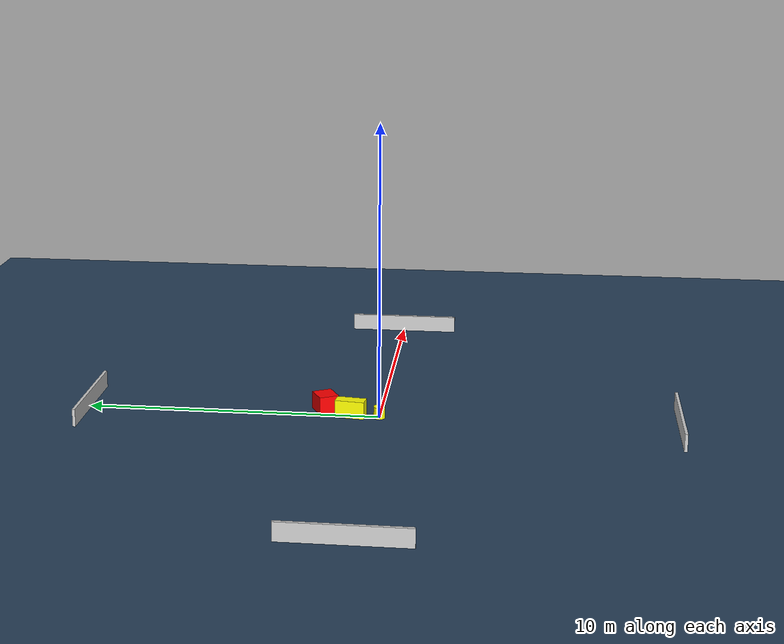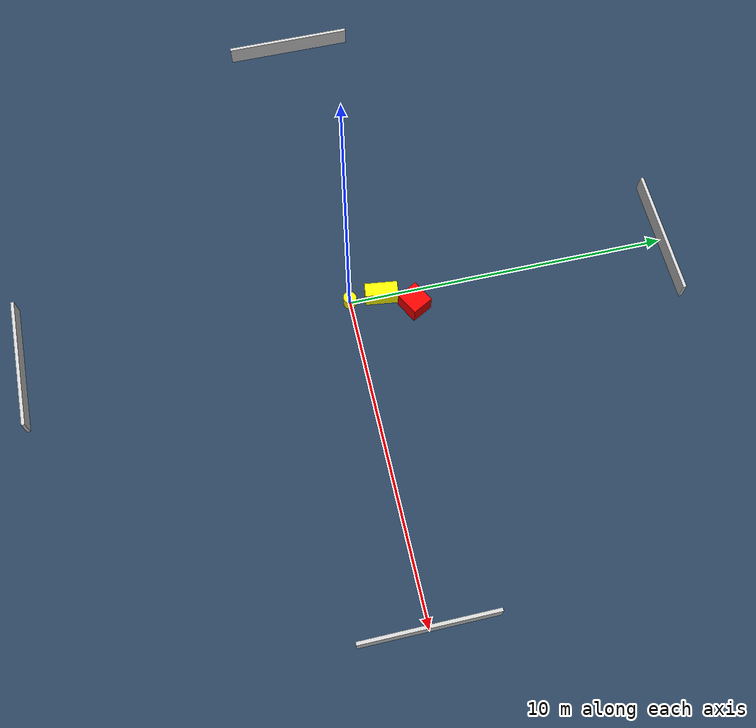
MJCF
<?xml version="1.0" ?>
<mujoco model="generated_environment">
  <option timestep="0.01" integrator="RK4" cone="elliptic"/>
  <default>
    <geom density="1"/>
  </default>
  <asset>
    <texture builtin="gradient" height="3072" name="skybox" rgb1="0.3 0.5 0.7" rgb2="0 0 0" type="skybox" width="512"/>
    <texture builtin="checker" height="300" name="groundplane" rgb1="0.2 0.3 0.4" rgb2="0.1 0.2 0.3" type="2d" width="300"/>
    <material name="groundplane" reflectance="0.2" texrepeat="5 5" texture="groundplane"/>
  </asset>
  <worldbody>
    <light dir="0 0 -1" directional="true" pos="0 0 1.5"/>
    <geom condim="3" friction="0.5 0.005 0.001" material="groundplane" name="floor" pos="0 0 0" size="0 0 0.05" type="plane"/>
    <body name="walls">
      <geom name="wall_1" condim="4" pos="-10.0 0.0 0.3" rgba="0.800000011920929 0.800000011920929 0.800000011920929 1.0" size="0.05 2.0 0.3" type="box"/>
      <geom name="wall_2" condim="4" pos="10.0 0.0 0.3" rgba="0.800000011920929 0.800000011920929 0.800000011920929 1.0" size="0.05 2.0 0.3" type="box"/>
      <geom name="wall_3" condim="4" pos="0.0 -10.0 0.3" rgba="0.800000011920929 0.800000011920929 0.800000011920929 1.0" size="2.0 0.05 0.3" type="box"/>
      <geom name="wall_4" condim="4" pos="0.0 10.0 0.3" rgba="0.800000011920929 0.800000011920929 0.800000011920929 1.0" size="2.0 0.05 0.3" type="box"/>
    </body>
    <body name="robot">
      <joint name="joint_x" type="slide" pos="0 0 0" axis="1 0 0"/>
      <joint name="joint_y" type="slide" pos="0 0 0" axis="0 1 0"/>
      <geom name="robot" type="cylinder" pos="0.0 0.0 0.2" size="0.2 0.2 0.0" mass="5.0" friction="1.0 0.005 0.0001" condim="4" rgba="1.0 1.0 0.0 1.0"/>
    </body>
    <body name="obstacle_1_movable">
      <geom name="obstacle_1_movable" condim="4" pos="0.020343335176112396 0.9776679414873445 0.3" euler="0 0 262.6879031250798" friction="0.0 0.005 0.001" rgba="1.0 1.0 0.0 1.0" size="0.5014047158886428 0.21864715954277272 0.3" type="box" mass="0.1"/>
      <joint type="free"/>
    </body>
    <body name="obstacle_2_static">
      <geom name="obstacle_2_static" condim="4" pos="0.5304352939917203 1.9053053296390563 0.3" euler="0 0 118.37401667967939" friction="0.0 0.005 0.001" rgba="1.0 0.0 0.0 1.0" size="0.3410402946180465 0.37049884470668143 0.3" type="box"/>
    </body>
  </worldbody>
  <actuator>
    <motor name="actuator_x" joint="joint_x" gear="1" ctrlrange="-1 1"/>
    <motor name="actuator_y" joint="joint_y" gear="1" ctrlrange="-1 1"/>
  </actuator>
</mujoco>
